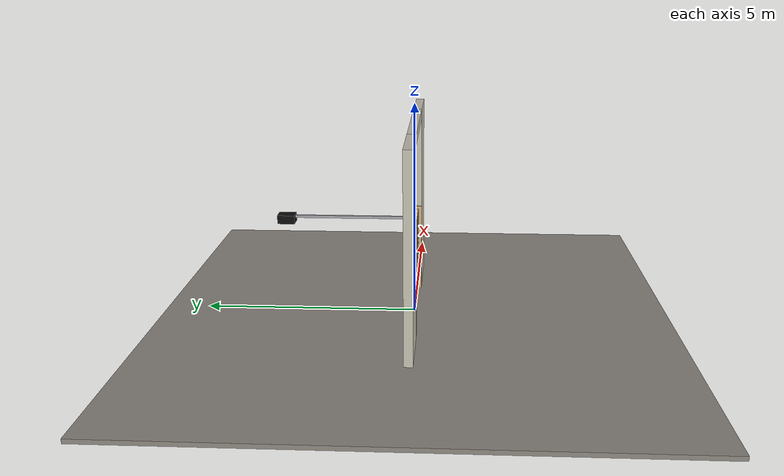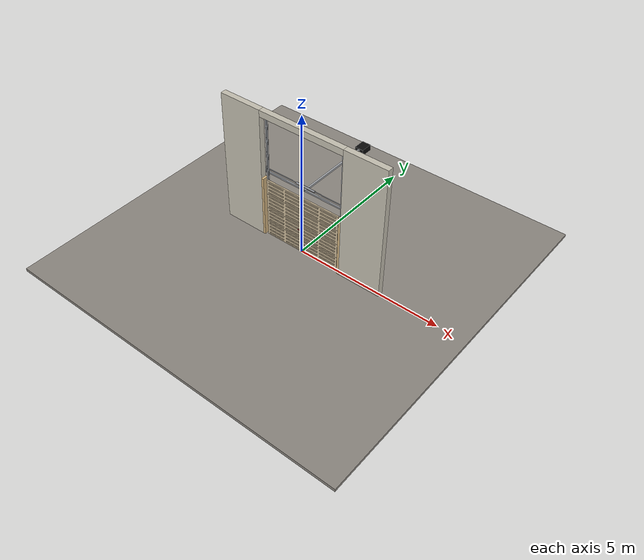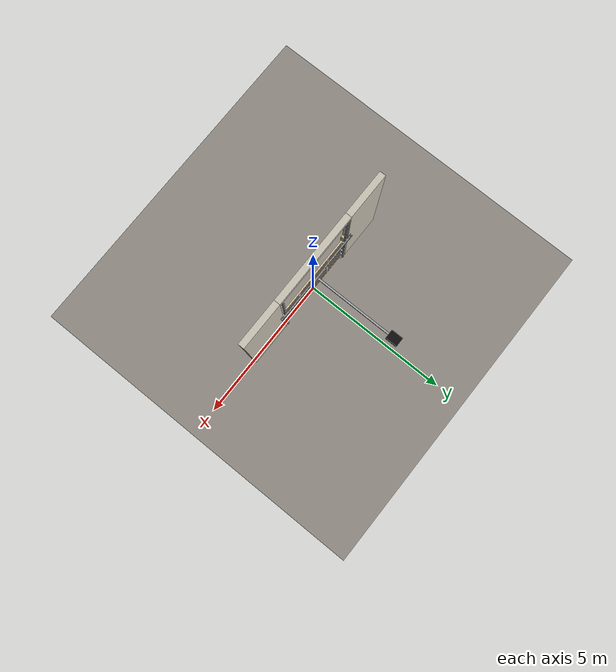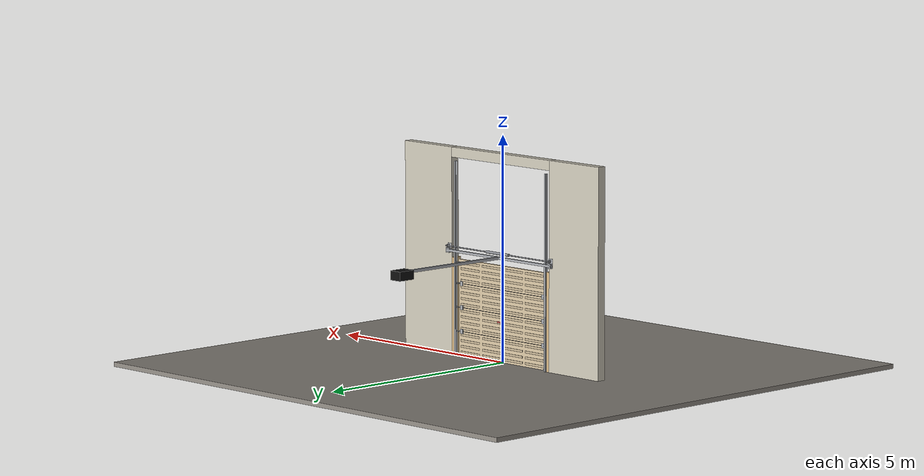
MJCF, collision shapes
<?xml version="1.0" ?>
<mujoco model="db0629_garage_sectional_full">
  <compiler angle="radian" meshdir="../../hardware" texturedir="../../textures" autolimits="true" inertiafromgeom="false"/>
  <option timestep="0.002" integrator="implicitfast" cone="elliptic" impratio="10" noslip_iterations="3">
    <flag multiccd="enable"/>
  </option>
  <size memory="16M"/>
  <default>
    <geom condim="4" solref="0.005 1" solimp="0.95 0.99 0.001"/>
    <joint solreflimit="0.005 1" solimplimit="0.95 0.99 0.001"/>
    <tendon solreflimit="0.005 1"/>
    <equality solref="0.002 1"/>
  </default>
  <visual>
    <headlight ambient="0.4 0.4 0.4" diffuse="0.7 0.7 0.7" specular="0.2 0.2 0.2"/>
    <quality shadowsize="4096"/>
    <map znear="0.01" zfar="60"/>
  </visual>
  <asset>
    <mesh name="pull_bdc5e965ab" file="pull_bdc5e965ab.obj"/>
    <material name="mat_floor" rgba="0.55 0.53 0.5 1" specular="0.2" shininess="0.15" reflectance="0"/>
    <material name="mat_wall" rgba="0.78 0.76 0.7 1" specular="0.2" shininess="0.1" reflectance="0"/>
    <material name="mat_frame" rgba="0.82 0.7 0.5 1" specular="0.2" shininess="0.45" reflectance="0"/>
    <material name="mat_track" rgba="0.65 0.66 0.68 1" specular="0.74" shininess="0.5" reflectance="0.36"/>
    <material name="mat_section_0" rgba="0.82 0.75 0.62 1" specular="0.23" shininess="0.49" reflectance="0.02"/>
    <material name="mat_section_0_panel" rgba="0.754 0.69 0.57 1" specular="0.23" shininess="0.49" reflectance="0.02"/>
    <material name="mat_section_1" rgba="0.82 0.75 0.62 1" specular="0.23" shininess="0.49" reflectance="0.02"/>
    <material name="mat_section_1_panel" rgba="0.754 0.69 0.57 1" specular="0.23" shininess="0.49" reflectance="0.02"/>
    <material name="mat_hinge_line" rgba="0.2 0.2 0.2 1" specular="0.2" shininess="0.3" reflectance="0"/>
    <material name="mat_section_2" rgba="0.82 0.75 0.62 1" specular="0.23" shininess="0.49" reflectance="0.02"/>
    <material name="mat_section_2_panel" rgba="0.754 0.69 0.57 1" specular="0.23" shininess="0.49" reflectance="0.02"/>
    <material name="mat_section_3" rgba="0.82 0.75 0.62 1" specular="0.23" shininess="0.49" reflectance="0.02"/>
    <material name="mat_section_3_panel" rgba="0.754 0.69 0.57 1" specular="0.23" shininess="0.49" reflectance="0.02"/>
    <material name="mat_spring" rgba="0.55 0.56 0.58 1" specular="0.8" shininess="0.55" reflectance="0.4"/>
    <material name="mat_opener" rgba="0.05 0.05 0.05 1" specular="0.38" shininess="0.3" reflectance="0.12"/>
    <material name="mat_op_black_matte_metal" rgba="0.05 0.05 0.05 1" specular="0.38" shininess="0.3" reflectance="0.12"/>
    <texture name="skybox" type="skybox" builtin="gradient" rgb1="0.6 0.7 0.85" rgb2="0.9 0.92 0.95" width="256" height="256"/>
  </asset>
  <worldbody>
    <light name="sun" pos="1.5 -2.5 4" dir="-0.3 0.5 -0.8" directional="true" diffuse="0.8 0.8 0.8" specular="0.3 0.3 0.3" castshadow="true"/>
    <light name="fill" pos="-1.5 2.5 3" dir="0.3 -0.5 -0.7" directional="true" diffuse="0.35 0.35 0.4" castshadow="false"/>
    <camera name="robot_view" pos="0 -3.240625 1.997375" xyaxes="1 0 0 0 0.26963 0.962964" fovy="52"/>
    <camera name="far_view" pos="0 3.240625 1.997375" xyaxes="-1 0 0 0 -0.26963 0.962964" fovy="52"/>
    <camera name="iso" pos="2.462875 -2.722125 2.515875" xyaxes="0.741536 0.670913 0 -0.242917 0.268487 0.932151" fovy="46"/>
    <camera name="detail_handle" pos="0.25 -1.175 1.25" xyaxes="0.975133 0.221621 0 -0.065674 0.288965 0.955084" fovy="38"/>
    <geom name="floor" type="box" size="6 6 0.05" pos="0 0 -0.05" material="mat_floor" group="0" contype="1" conaffinity="1" friction="0.8 0.005 0.0001" density="2400"/>
    <geom name="wall_left" type="box" size="0.7425 0.1 2.305" pos="-2.2575 0 2.305" material="mat_wall" group="0" contype="1" conaffinity="1" friction="0.6 0.005 0.0001" density="800"/>
    <geom name="wall_right" type="box" size="0.7425 0.1 2.305" pos="2.2575 0 2.305" material="mat_wall" group="0" contype="1" conaffinity="1" friction="0.6 0.005 0.0001" density="800"/>
    <geom name="wall_header" type="box" size="1.515 0.1 0.11" pos="0 0 4.5" material="mat_wall" group="0" contype="1" conaffinity="1" friction="0.6 0.005 0.0001" density="800"/>
    <geom name="garage_jamb_l" type="box" size="0.04 0.1 1.09" pos="-1.475 0 1.09" material="mat_frame" group="0" contype="1" conaffinity="1" friction="0.6 0.005 0.0001" density="400"/>
    <geom name="garage_jamb_r" type="box" size="0.04 0.1 1.09" pos="1.475 0 1.09" material="mat_frame" group="0" contype="1" conaffinity="1" friction="0.6 0.005 0.0001" density="400"/>
    <geom name="track_l" type="box" size="0.004 0.033 2.155" pos="-1.42 0.085 2.155" material="mat_track" group="0" contype="1" conaffinity="1" friction="0.6 0.005 0.0001" density="7850"/>
    <geom name="track_l_flange_n" type="box" size="0.022 0.004 2.155" pos="-1.402 0.056 2.155" material="mat_track" group="0" contype="1" conaffinity="1" friction="0.6 0.005 0.0001" density="7850"/>
    <geom name="track_l_flange_p" type="box" size="0.022 0.004 2.155" pos="-1.402 0.114 2.155" material="mat_track" group="0" contype="1" conaffinity="1" friction="0.6 0.005 0.0001" density="7850"/>
    <geom name="track_r" type="box" size="0.004 0.033 2.155" pos="1.42 0.085 2.155" material="mat_track" group="0" contype="1" conaffinity="1" friction="0.6 0.005 0.0001" density="7850"/>
    <geom name="track_r_flange_n" type="box" size="0.022 0.004 2.155" pos="1.402 0.056 2.155" material="mat_track" group="0" contype="1" conaffinity="1" friction="0.6 0.005 0.0001" density="7850"/>
    <geom name="track_r_flange_p" type="box" size="0.022 0.004 2.155" pos="1.402 0.114 2.155" material="mat_track" group="0" contype="1" conaffinity="1" friction="0.6 0.005 0.0001" density="7850"/>
    <geom name="torsion_shaft" type="cylinder" size="0.013 1.625" pos="0 0.17 2.43" quat="0.707107 0 0.707107 0" material="mat_track" group="0" contype="1" conaffinity="1" friction="0.6 0.005 0.0001" density="7850"/>
    <geom name="torsion_spring" type="cylinder" size="0.03 0.35" pos="0 0.17 2.43" quat="0.707107 0 0.707107 0" material="mat_spring" group="1" contype="0" conaffinity="0" density="7850"/>
    <geom name="torsion_bearing_plate_l" type="box" size="0.055 0.004 0.055" pos="-1.575 0.104 2.43" material="mat_track" group="1" contype="0" conaffinity="0" density="7850"/>
    <geom name="torsion_bearing_arm_l" type="box" size="0.008 0.049 0.03" pos="-1.575 0.139 2.43" material="mat_track" group="1" contype="0" conaffinity="0" density="7850"/>
    <geom name="torsion_bearing_plate_r" type="box" size="0.055 0.004 0.055" pos="1.575 0.104 2.43" material="mat_track" group="1" contype="0" conaffinity="0" density="7850"/>
    <geom name="torsion_bearing_arm_r" type="box" size="0.008 0.049 0.03" pos="1.575 0.139 2.43" material="mat_track" group="1" contype="0" conaffinity="0" density="7850"/>
    <geom name="opener_header_angle" type="box" size="1.63 0.025 0.025" pos="0 0.145 2.33" material="mat_track" group="1" contype="0" conaffinity="0" density="7850"/>
    <geom name="opener_header_gusset_l" type="box" size="0.05 0.035 0.05" pos="-1.575 0.135 2.33" material="mat_track" group="1" contype="0" conaffinity="0" density="7850"/>
    <geom name="opener_header_gusset_r" type="box" size="0.05 0.035 0.05" pos="1.575 0.135 2.33" material="mat_track" group="1" contype="0" conaffinity="0" density="7850"/>
    <geom name="opener_rail" type="box" size="0.03 1.44 0.03" pos="0 1.56 2.33" material="mat_track" group="0" contype="1" conaffinity="1" friction="0.6 0.005 0.0001" density="7850"/>
    <geom name="opener_unit" type="box" size="0.15 0.2 0.1" pos="0 3 2.28" material="mat_opener" group="0" contype="1" conaffinity="1" friction="0.6 0.005 0.0001" density="500"/>
    <site name="approach_point" pos="0 -2 0" quat="1 0 0 0" size="0.05" rgba="0.2 0.9 0.2 0.5" group="4"/>
    <site name="goal_point" pos="0 2 0" quat="1 0 0 0" size="0.05" rgba="0.2 0.9 0.2 0.5" group="4"/>
    <site name="door_plane_center" pos="0 0 1.09" quat="1 0 0 0" size="0.02" rgba="0.2 0.9 0.2 0.5" group="4"/>
    <body name="door" pos="0 0 0">
      <inertial pos="0 0.009126 1.072751" mass="78.529822" quat="0.707116 -0.707097 0 0" diaginertia="28.589489168 59.907256653 88.392318489"/>
      <joint name="door_slide" type="slide" axis="0 0 1" limited="true" range="0 0.003" damping="5.926491" frictionloss="15.40229" armature="0.5"/>
      <geom name="section_0_slab" type="box" size="1.37 0.025 0.26625" pos="0 0 0.27625" material="mat_section_0" group="0" contype="1" conaffinity="1" friction="0.4 0.005 0.0001" density="1"/>
      <geom name="section_0_panel_0_n" type="box" size="0.295 0.003 0.024062" pos="-1.005 -0.028 0.084062" material="mat_section_0_panel" group="1" contype="0" conaffinity="0" density="1"/>
      <geom name="section_0_panel_0_p" type="box" size="0.295 0.003 0.024062" pos="-1.005 0.028 0.084062" material="mat_section_0_panel" group="1" contype="0" conaffinity="0" density="1"/>
      <geom name="section_0_panel_1_n" type="box" size="0.295 0.003 0.024062" pos="-0.335 -0.028 0.084062" material="mat_section_0_panel" group="1" contype="0" conaffinity="0" density="1"/>
      <geom name="section_0_panel_1_p" type="box" size="0.295 0.003 0.024062" pos="-0.335 0.028 0.084062" material="mat_section_0_panel" group="1" contype="0" conaffinity="0" density="1"/>
      <geom name="section_0_panel_2_n" type="box" size="0.295 0.003 0.024062" pos="0.335 -0.028 0.084062" material="mat_section_0_panel" group="1" contype="0" conaffinity="0" density="1"/>
      <geom name="section_0_panel_2_p" type="box" size="0.295 0.003 0.024062" pos="0.335 0.028 0.084062" material="mat_section_0_panel" group="1" contype="0" conaffinity="0" density="1"/>
      <geom name="section_0_panel_3_n" type="box" size="0.295 0.003 0.024062" pos="1.005 -0.028 0.084062" material="mat_section_0_panel" group="1" contype="0" conaffinity="0" density="1"/>
      <geom name="section_0_panel_3_p" type="box" size="0.295 0.003 0.024062" pos="1.005 0.028 0.084062" material="mat_section_0_panel" group="1" contype="0" conaffinity="0" density="1"/>
      <geom name="section_0_panel_4_n" type="box" size="0.295 0.003 0.024062" pos="-1.005 -0.028 0.212188" material="mat_section_0_panel" group="1" contype="0" conaffinity="0" density="1"/>
      <geom name="section_0_panel_4_p" type="box" size="0.295 0.003 0.024062" pos="-1.005 0.028 0.212188" material="mat_section_0_panel" group="1" contype="0" conaffinity="0" density="1"/>
      <geom name="section_0_panel_5_n" type="box" size="0.295 0.003 0.024062" pos="-0.335 -0.028 0.212188" material="mat_section_0_panel" group="1" contype="0" conaffinity="0" density="1"/>
      <geom name="section_0_panel_5_p" type="box" size="0.295 0.003 0.024062" pos="-0.335 0.028 0.212188" material="mat_section_0_panel" group="1" contype="0" conaffinity="0" density="1"/>
      <geom name="section_0_panel_6_n" type="box" size="0.295 0.003 0.024062" pos="0.335 -0.028 0.212188" material="mat_section_0_panel" group="1" contype="0" conaffinity="0" density="1"/>
      <geom name="section_0_panel_6_p" type="box" size="0.295 0.003 0.024062" pos="0.335 0.028 0.212188" material="mat_section_0_panel" group="1" contype="0" conaffinity="0" density="1"/>
      <geom name="section_0_panel_7_n" type="box" size="0.295 0.003 0.024062" pos="1.005 -0.028 0.212188" material="mat_section_0_panel" group="1" contype="0" conaffinity="0" density="1"/>
      <geom name="section_0_panel_7_p" type="box" size="0.295 0.003 0.024062" pos="1.005 0.028 0.212188" material="mat_section_0_panel" group="1" contype="0" conaffinity="0" density="1"/>
      <geom name="section_0_panel_8_n" type="box" size="0.295 0.003 0.024062" pos="-1.005 -0.028 0.340313" material="mat_section_0_panel" group="1" contype="0" conaffinity="0" density="1"/>
      <geom name="section_0_panel_8_p" type="box" size="0.295 0.003 0.024062" pos="-1.005 0.028 0.340313" material="mat_section_0_panel" group="1" contype="0" conaffinity="0" density="1"/>
      <geom name="section_0_panel_9_n" type="box" size="0.295 0.003 0.024062" pos="-0.335 -0.028 0.340313" material="mat_section_0_panel" group="1" contype="0" conaffinity="0" density="1"/>
      <geom name="section_0_panel_9_p" type="box" size="0.295 0.003 0.024062" pos="-0.335 0.028 0.340313" material="mat_section_0_panel" group="1" contype="0" conaffinity="0" density="1"/>
      <geom name="section_0_panel_10_n" type="box" size="0.295 0.003 0.024062" pos="0.335 -0.028 0.340313" material="mat_section_0_panel" group="1" contype="0" conaffinity="0" density="1"/>
      <geom name="section_0_panel_10_p" type="box" size="0.295 0.003 0.024062" pos="0.335 0.028 0.340313" material="mat_section_0_panel" group="1" contype="0" conaffinity="0" density="1"/>
      <geom name="section_0_panel_11_n" type="box" size="0.295 0.003 0.024062" pos="1.005 -0.028 0.340313" material="mat_section_0_panel" group="1" contype="0" conaffinity="0" density="1"/>
      <geom name="section_0_panel_11_p" type="box" size="0.295 0.003 0.024062" pos="1.005 0.028 0.340313" material="mat_section_0_panel" group="1" contype="0" conaffinity="0" density="1"/>
      <geom name="section_0_panel_12_n" type="box" size="0.295 0.003 0.024062" pos="-1.005 -0.028 0.468437" material="mat_section_0_panel" group="1" contype="0" conaffinity="0" density="1"/>
      <geom name="section_0_panel_12_p" type="box" size="0.295 0.003 0.024062" pos="-1.005 0.028 0.468437" material="mat_section_0_panel" group="1" contype="0" conaffinity="0" density="1"/>
      <geom name="section_0_panel_13_n" type="box" size="0.295 0.003 0.024062" pos="-0.335 -0.028 0.468437" material="mat_section_0_panel" group="1" contype="0" conaffinity="0" density="1"/>
      <geom name="section_0_panel_13_p" type="box" size="0.295 0.003 0.024062" pos="-0.335 0.028 0.468437" material="mat_section_0_panel" group="1" contype="0" conaffinity="0" density="1"/>
      <geom name="section_0_panel_14_n" type="box" size="0.295 0.003 0.024062" pos="0.335 -0.028 0.468437" material="mat_section_0_panel" group="1" contype="0" conaffinity="0" density="1"/>
      <geom name="section_0_panel_14_p" type="box" size="0.295 0.003 0.024062" pos="0.335 0.028 0.468437" material="mat_section_0_panel" group="1" contype="0" conaffinity="0" density="1"/>
      <geom name="section_0_panel_15_n" type="box" size="0.295 0.003 0.024062" pos="1.005 -0.028 0.468437" material="mat_section_0_panel" group="1" contype="0" conaffinity="0" density="1"/>
      <geom name="section_0_panel_15_p" type="box" size="0.295 0.003 0.024062" pos="1.005 0.028 0.468437" material="mat_section_0_panel" group="1" contype="0" conaffinity="0" density="1"/>
      <geom name="section_1_slab" type="box" size="1.37 0.025 0.26625" pos="0 0 0.80875" material="mat_section_1" group="0" contype="1" conaffinity="1" friction="0.4 0.005 0.0001" density="1"/>
      <geom name="section_1_panel_0_n" type="box" size="0.295 0.003 0.024062" pos="-1.005 -0.028 0.616563" material="mat_section_1_panel" group="1" contype="0" conaffinity="0" density="1"/>
      <geom name="section_1_panel_0_p" type="box" size="0.295 0.003 0.024062" pos="-1.005 0.028 0.616563" material="mat_section_1_panel" group="1" contype="0" conaffinity="0" density="1"/>
      <geom name="section_1_panel_1_n" type="box" size="0.295 0.003 0.024062" pos="-0.335 -0.028 0.616563" material="mat_section_1_panel" group="1" contype="0" conaffinity="0" density="1"/>
      <geom name="section_1_panel_1_p" type="box" size="0.295 0.003 0.024062" pos="-0.335 0.028 0.616563" material="mat_section_1_panel" group="1" contype="0" conaffinity="0" density="1"/>
      <geom name="section_1_panel_2_n" type="box" size="0.295 0.003 0.024062" pos="0.335 -0.028 0.616563" material="mat_section_1_panel" group="1" contype="0" conaffinity="0" density="1"/>
      <geom name="section_1_panel_2_p" type="box" size="0.295 0.003 0.024062" pos="0.335 0.028 0.616563" material="mat_section_1_panel" group="1" contype="0" conaffinity="0" density="1"/>
      <geom name="section_1_panel_3_n" type="box" size="0.295 0.003 0.024062" pos="1.005 -0.028 0.616563" material="mat_section_1_panel" group="1" contype="0" conaffinity="0" density="1"/>
      <geom name="section_1_panel_3_p" type="box" size="0.295 0.003 0.024062" pos="1.005 0.028 0.616563" material="mat_section_1_panel" group="1" contype="0" conaffinity="0" density="1"/>
      <geom name="section_1_panel_4_n" type="box" size="0.295 0.003 0.024062" pos="-1.005 -0.028 0.744687" material="mat_section_1_panel" group="1" contype="0" conaffinity="0" density="1"/>
      <geom name="section_1_panel_4_p" type="box" size="0.295 0.003 0.024062" pos="-1.005 0.028 0.744687" material="mat_section_1_panel" group="1" contype="0" conaffinity="0" density="1"/>
      <geom name="section_1_panel_5_n" type="box" size="0.295 0.003 0.024062" pos="-0.335 -0.028 0.744687" material="mat_section_1_panel" group="1" contype="0" conaffinity="0" density="1"/>
      <geom name="section_1_panel_5_p" type="box" size="0.295 0.003 0.024062" pos="-0.335 0.028 0.744687" material="mat_section_1_panel" group="1" contype="0" conaffinity="0" density="1"/>
      <geom name="section_1_panel_6_n" type="box" size="0.295 0.003 0.024062" pos="0.335 -0.028 0.744687" material="mat_section_1_panel" group="1" contype="0" conaffinity="0" density="1"/>
      <geom name="section_1_panel_6_p" type="box" size="0.295 0.003 0.024062" pos="0.335 0.028 0.744687" material="mat_section_1_panel" group="1" contype="0" conaffinity="0" density="1"/>
      <geom name="section_1_panel_7_n" type="box" size="0.295 0.003 0.024062" pos="1.005 -0.028 0.744687" material="mat_section_1_panel" group="1" contype="0" conaffinity="0" density="1"/>
      <geom name="section_1_panel_7_p" type="box" size="0.295 0.003 0.024062" pos="1.005 0.028 0.744687" material="mat_section_1_panel" group="1" contype="0" conaffinity="0" density="1"/>
      <geom name="section_1_panel_8_n" type="box" size="0.295 0.003 0.024062" pos="-1.005 -0.028 0.872812" material="mat_section_1_panel" group="1" contype="0" conaffinity="0" density="1"/>
      <geom name="section_1_panel_8_p" type="box" size="0.295 0.003 0.024062" pos="-1.005 0.028 0.872812" material="mat_section_1_panel" group="1" contype="0" conaffinity="0" density="1"/>
      <geom name="section_1_panel_9_n" type="box" size="0.295 0.003 0.024062" pos="-0.335 -0.028 0.872812" material="mat_section_1_panel" group="1" contype="0" conaffinity="0" density="1"/>
      <geom name="section_1_panel_9_p" type="box" size="0.295 0.003 0.024062" pos="-0.335 0.028 0.872812" material="mat_section_1_panel" group="1" contype="0" conaffinity="0" density="1"/>
      <geom name="section_1_panel_10_n" type="box" size="0.295 0.003 0.024062" pos="0.335 -0.028 0.872812" material="mat_section_1_panel" group="1" contype="0" conaffinity="0" density="1"/>
      <geom name="section_1_panel_10_p" type="box" size="0.295 0.003 0.024062" pos="0.335 0.028 0.872812" material="mat_section_1_panel" group="1" contype="0" conaffinity="0" density="1"/>
      <geom name="section_1_panel_11_n" type="box" size="0.295 0.003 0.024062" pos="1.005 -0.028 0.872812" material="mat_section_1_panel" group="1" contype="0" conaffinity="0" density="1"/>
      <geom name="section_1_panel_11_p" type="box" size="0.295 0.003 0.024062" pos="1.005 0.028 0.872812" material="mat_section_1_panel" group="1" contype="0" conaffinity="0" density="1"/>
      <geom name="section_1_panel_12_n" type="box" size="0.295 0.003 0.024062" pos="-1.005 -0.028 1.000937" material="mat_section_1_panel" group="1" contype="0" conaffinity="0" density="1"/>
      <geom name="section_1_panel_12_p" type="box" size="0.295 0.003 0.024062" pos="-1.005 0.028 1.000937" material="mat_section_1_panel" group="1" contype="0" conaffinity="0" density="1"/>
      <geom name="section_1_panel_13_n" type="box" size="0.295 0.003 0.024062" pos="-0.335 -0.028 1.000937" material="mat_section_1_panel" group="1" contype="0" conaffinity="0" density="1"/>
      <geom name="section_1_panel_13_p" type="box" size="0.295 0.003 0.024062" pos="-0.335 0.028 1.000937" material="mat_section_1_panel" group="1" contype="0" conaffinity="0" density="1"/>
      <geom name="section_1_panel_14_n" type="box" size="0.295 0.003 0.024062" pos="0.335 -0.028 1.000937" material="mat_section_1_panel" group="1" contype="0" conaffinity="0" density="1"/>
      <geom name="section_1_panel_14_p" type="box" size="0.295 0.003 0.024062" pos="0.335 0.028 1.000937" material="mat_section_1_panel" group="1" contype="0" conaffinity="0" density="1"/>
      <geom name="section_1_panel_15_n" type="box" size="0.295 0.003 0.024062" pos="1.005 -0.028 1.000937" material="mat_section_1_panel" group="1" contype="0" conaffinity="0" density="1"/>
      <geom name="section_1_panel_15_p" type="box" size="0.295 0.003 0.024062" pos="1.005 0.028 1.000937" material="mat_section_1_panel" group="1" contype="0" conaffinity="0" density="1"/>
      <geom name="section_hinge_line_1" type="box" size="1.35 0.001 0.004" pos="0 0.026 0.5425" material="mat_hinge_line" group="1" contype="0" conaffinity="0" density="1"/>
      <geom name="section_hinge_1_147" type="box" size="0.04 0.01 0.05" pos="-1.27 0.035 0.5425" material="mat_track" group="1" contype="0" conaffinity="0" density="7850"/>
      <geom name="section_hinge_1_274" type="box" size="0.04 0.01 0.05" pos="0 0.035 0.5425" material="mat_track" group="1" contype="0" conaffinity="0" density="7850"/>
      <geom name="section_hinge_1_401" type="box" size="0.04 0.01 0.05" pos="1.27 0.035 0.5425" material="mat_track" group="1" contype="0" conaffinity="0" density="7850"/>
      <geom name="section_2_slab" type="box" size="1.37 0.025 0.26625" pos="0 0 1.34125" material="mat_section_2" group="0" contype="1" conaffinity="1" friction="0.4 0.005 0.0001" density="1"/>
      <geom name="section_2_panel_0_n" type="box" size="0.295 0.003 0.024062" pos="-1.005 -0.028 1.149062" material="mat_section_2_panel" group="1" contype="0" conaffinity="0" density="1"/>
      <geom name="section_2_panel_0_p" type="box" size="0.295 0.003 0.024062" pos="-1.005 0.028 1.149062" material="mat_section_2_panel" group="1" contype="0" conaffinity="0" density="1"/>
      <geom name="section_2_panel_1_n" type="box" size="0.295 0.003 0.024062" pos="-0.335 -0.028 1.149062" material="mat_section_2_panel" group="1" contype="0" conaffinity="0" density="1"/>
      <geom name="section_2_panel_1_p" type="box" size="0.295 0.003 0.024062" pos="-0.335 0.028 1.149062" material="mat_section_2_panel" group="1" contype="0" conaffinity="0" density="1"/>
      <geom name="section_2_panel_2_n" type="box" size="0.295 0.003 0.024062" pos="0.335 -0.028 1.149062" material="mat_section_2_panel" group="1" contype="0" conaffinity="0" density="1"/>
      <geom name="section_2_panel_2_p" type="box" size="0.295 0.003 0.024062" pos="0.335 0.028 1.149062" material="mat_section_2_panel" group="1" contype="0" conaffinity="0" density="1"/>
      <geom name="section_2_panel_3_n" type="box" size="0.295 0.003 0.024062" pos="1.005 -0.028 1.149062" material="mat_section_2_panel" group="1" contype="0" conaffinity="0" density="1"/>
      <geom name="section_2_panel_3_p" type="box" size="0.295 0.003 0.024062" pos="1.005 0.028 1.149062" material="mat_section_2_panel" group="1" contype="0" conaffinity="0" density="1"/>
      <geom name="section_2_panel_4_n" type="box" size="0.295 0.003 0.024062" pos="-1.005 -0.028 1.277187" material="mat_section_2_panel" group="1" contype="0" conaffinity="0" density="1"/>
      <geom name="section_2_panel_4_p" type="box" size="0.295 0.003 0.024062" pos="-1.005 0.028 1.277187" material="mat_section_2_panel" group="1" contype="0" conaffinity="0" density="1"/>
      <geom name="section_2_panel_5_n" type="box" size="0.295 0.003 0.024062" pos="-0.335 -0.028 1.277187" material="mat_section_2_panel" group="1" contype="0" conaffinity="0" density="1"/>
      <geom name="section_2_panel_5_p" type="box" size="0.295 0.003 0.024062" pos="-0.335 0.028 1.277187" material="mat_section_2_panel" group="1" contype="0" conaffinity="0" density="1"/>
      <geom name="section_2_panel_6_n" type="box" size="0.295 0.003 0.024062" pos="0.335 -0.028 1.277187" material="mat_section_2_panel" group="1" contype="0" conaffinity="0" density="1"/>
      <geom name="section_2_panel_6_p" type="box" size="0.295 0.003 0.024062" pos="0.335 0.028 1.277187" material="mat_section_2_panel" group="1" contype="0" conaffinity="0" density="1"/>
      <geom name="section_2_panel_7_n" type="box" size="0.295 0.003 0.024062" pos="1.005 -0.028 1.277187" material="mat_section_2_panel" group="1" contype="0" conaffinity="0" density="1"/>
      <geom name="section_2_panel_7_p" type="box" size="0.295 0.003 0.024062" pos="1.005 0.028 1.277187" material="mat_section_2_panel" group="1" contype="0" conaffinity="0" density="1"/>
      <geom name="section_2_panel_8_n" type="box" size="0.295 0.003 0.024062" pos="-1.005 -0.028 1.405312" material="mat_section_2_panel" group="1" contype="0" conaffinity="0" density="1"/>
      <geom name="section_2_panel_8_p" type="box" size="0.295 0.003 0.024062" pos="-1.005 0.028 1.405312" material="mat_section_2_panel" group="1" contype="0" conaffinity="0" density="1"/>
      <geom name="section_2_panel_9_n" type="box" size="0.295 0.003 0.024062" pos="-0.335 -0.028 1.405312" material="mat_section_2_panel" group="1" contype="0" conaffinity="0" density="1"/>
      <geom name="section_2_panel_9_p" type="box" size="0.295 0.003 0.024062" pos="-0.335 0.028 1.405312" material="mat_section_2_panel" group="1" contype="0" conaffinity="0" density="1"/>
      <geom name="section_2_panel_10_n" type="box" size="0.295 0.003 0.024062" pos="0.335 -0.028 1.405312" material="mat_section_2_panel" group="1" contype="0" conaffinity="0" density="1"/>
      <geom name="section_2_panel_10_p" type="box" size="0.295 0.003 0.024062" pos="0.335 0.028 1.405312" material="mat_section_2_panel" group="1" contype="0" conaffinity="0" density="1"/>
      <geom name="section_2_panel_11_n" type="box" size="0.295 0.003 0.024062" pos="1.005 -0.028 1.405312" material="mat_section_2_panel" group="1" contype="0" conaffinity="0" density="1"/>
      <geom name="section_2_panel_11_p" type="box" size="0.295 0.003 0.024062" pos="1.005 0.028 1.405312" material="mat_section_2_panel" group="1" contype="0" conaffinity="0" density="1"/>
      <geom name="section_2_panel_12_n" type="box" size="0.295 0.003 0.024062" pos="-1.005 -0.028 1.533437" material="mat_section_2_panel" group="1" contype="0" conaffinity="0" density="1"/>
      <geom name="section_2_panel_12_p" type="box" size="0.295 0.003 0.024062" pos="-1.005 0.028 1.533437" material="mat_section_2_panel" group="1" contype="0" conaffinity="0" density="1"/>
      <geom name="section_2_panel_13_n" type="box" size="0.295 0.003 0.024062" pos="-0.335 -0.028 1.533437" material="mat_section_2_panel" group="1" contype="0" conaffinity="0" density="1"/>
      <geom name="section_2_panel_13_p" type="box" size="0.295 0.003 0.024062" pos="-0.335 0.028 1.533437" material="mat_section_2_panel" group="1" contype="0" conaffinity="0" density="1"/>
      <geom name="section_2_panel_14_n" type="box" size="0.295 0.003 0.024062" pos="0.335 -0.028 1.533437" material="mat_section_2_panel" group="1" contype="0" conaffinity="0" density="1"/>
      <geom name="section_2_panel_14_p" type="box" size="0.295 0.003 0.024062" pos="0.335 0.028 1.533437" material="mat_section_2_panel" group="1" contype="0" conaffinity="0" density="1"/>
      <geom name="section_2_panel_15_n" type="box" size="0.295 0.003 0.024062" pos="1.005 -0.028 1.533437" material="mat_section_2_panel" group="1" contype="0" conaffinity="0" density="1"/>
      <geom name="section_2_panel_15_p" type="box" size="0.295 0.003 0.024062" pos="1.005 0.028 1.533437" material="mat_section_2_panel" group="1" contype="0" conaffinity="0" density="1"/>
      <geom name="section_hinge_line_2" type="box" size="1.35 0.001 0.004" pos="0 0.026 1.075" material="mat_hinge_line" group="1" contype="0" conaffinity="0" density="1"/>
      <geom name="section_hinge_2_147" type="box" size="0.04 0.01 0.05" pos="-1.27 0.035 1.075" material="mat_track" group="1" contype="0" conaffinity="0" density="7850"/>
      <geom name="section_hinge_2_274" type="box" size="0.04 0.01 0.05" pos="0 0.035 1.075" material="mat_track" group="1" contype="0" conaffinity="0" density="7850"/>
      <geom name="section_hinge_2_401" type="box" size="0.04 0.01 0.05" pos="1.27 0.035 1.075" material="mat_track" group="1" contype="0" conaffinity="0" density="7850"/>
      <geom name="section_3_slab" type="box" size="1.37 0.025 0.26625" pos="0 0 1.87375" material="mat_section_3" group="0" contype="1" conaffinity="1" friction="0.4 0.005 0.0001" density="1"/>
      <geom name="section_3_panel_0_n" type="box" size="0.295 0.003 0.024062" pos="-1.005 -0.028 1.681562" material="mat_section_3_panel" group="1" contype="0" conaffinity="0" density="1"/>
      <geom name="section_3_panel_0_p" type="box" size="0.295 0.003 0.024062" pos="-1.005 0.028 1.681562" material="mat_section_3_panel" group="1" contype="0" conaffinity="0" density="1"/>
      <geom name="section_3_panel_1_n" type="box" size="0.295 0.003 0.024062" pos="-0.335 -0.028 1.681562" material="mat_section_3_panel" group="1" contype="0" conaffinity="0" density="1"/>
      <geom name="section_3_panel_1_p" type="box" size="0.295 0.003 0.024062" pos="-0.335 0.028 1.681562" material="mat_section_3_panel" group="1" contype="0" conaffinity="0" density="1"/>
      <geom name="section_3_panel_2_n" type="box" size="0.295 0.003 0.024062" pos="0.335 -0.028 1.681562" material="mat_section_3_panel" group="1" contype="0" conaffinity="0" density="1"/>
      <geom name="section_3_panel_2_p" type="box" size="0.295 0.003 0.024062" pos="0.335 0.028 1.681562" material="mat_section_3_panel" group="1" contype="0" conaffinity="0" density="1"/>
      <geom name="section_3_panel_3_n" type="box" size="0.295 0.003 0.024062" pos="1.005 -0.028 1.681562" material="mat_section_3_panel" group="1" contype="0" conaffinity="0" density="1"/>
      <geom name="section_3_panel_3_p" type="box" size="0.295 0.003 0.024062" pos="1.005 0.028 1.681562" material="mat_section_3_panel" group="1" contype="0" conaffinity="0" density="1"/>
      <geom name="section_3_panel_4_n" type="box" size="0.295 0.003 0.024062" pos="-1.005 -0.028 1.809687" material="mat_section_3_panel" group="1" contype="0" conaffinity="0" density="1"/>
      <geom name="section_3_panel_4_p" type="box" size="0.295 0.003 0.024062" pos="-1.005 0.028 1.809687" material="mat_section_3_panel" group="1" contype="0" conaffinity="0" density="1"/>
      <geom name="section_3_panel_5_n" type="box" size="0.295 0.003 0.024062" pos="-0.335 -0.028 1.809687" material="mat_section_3_panel" group="1" contype="0" conaffinity="0" density="1"/>
      <geom name="section_3_panel_5_p" type="box" size="0.295 0.003 0.024062" pos="-0.335 0.028 1.809687" material="mat_section_3_panel" group="1" contype="0" conaffinity="0" density="1"/>
      <geom name="section_3_panel_6_n" type="box" size="0.295 0.003 0.024062" pos="0.335 -0.028 1.809687" material="mat_section_3_panel" group="1" contype="0" conaffinity="0" density="1"/>
      <geom name="section_3_panel_6_p" type="box" size="0.295 0.003 0.024062" pos="0.335 0.028 1.809687" material="mat_section_3_panel" group="1" contype="0" conaffinity="0" density="1"/>
      <geom name="section_3_panel_7_n" type="box" size="0.295 0.003 0.024062" pos="1.005 -0.028 1.809687" material="mat_section_3_panel" group="1" contype="0" conaffinity="0" density="1"/>
      <geom name="section_3_panel_7_p" type="box" size="0.295 0.003 0.024062" pos="1.005 0.028 1.809687" material="mat_section_3_panel" group="1" contype="0" conaffinity="0" density="1"/>
      <geom name="section_3_panel_8_n" type="box" size="0.295 0.003 0.024062" pos="-1.005 -0.028 1.937812" material="mat_section_3_panel" group="1" contype="0" conaffinity="0" density="1"/>
      <geom name="section_3_panel_8_p" type="box" size="0.295 0.003 0.024062" pos="-1.005 0.028 1.937812" material="mat_section_3_panel" group="1" contype="0" conaffinity="0" density="1"/>
      <geom name="section_3_panel_9_n" type="box" size="0.295 0.003 0.024062" pos="-0.335 -0.028 1.937812" material="mat_section_3_panel" group="1" contype="0" conaffinity="0" density="1"/>
      <geom name="section_3_panel_9_p" type="box" size="0.295 0.003 0.024062" pos="-0.335 0.028 1.937812" material="mat_section_3_panel" group="1" contype="0" conaffinity="0" density="1"/>
      <geom name="section_3_panel_10_n" type="box" size="0.295 0.003 0.024062" pos="0.335 -0.028 1.937812" material="mat_section_3_panel" group="1" contype="0" conaffinity="0" density="1"/>
      <geom name="section_3_panel_10_p" type="box" size="0.295 0.003 0.024062" pos="0.335 0.028 1.937812" material="mat_section_3_panel" group="1" contype="0" conaffinity="0" density="1"/>
      <geom name="section_3_panel_11_n" type="box" size="0.295 0.003 0.024062" pos="1.005 -0.028 1.937812" material="mat_section_3_panel" group="1" contype="0" conaffinity="0" density="1"/>
      <geom name="section_3_panel_11_p" type="box" size="0.295 0.003 0.024062" pos="1.005 0.028 1.937812" material="mat_section_3_panel" group="1" contype="0" conaffinity="0" density="1"/>
      <geom name="section_3_panel_12_n" type="box" size="0.295 0.003 0.024062" pos="-1.005 -0.028 2.065937" material="mat_section_3_panel" group="1" contype="0" conaffinity="0" density="1"/>
      <geom name="section_3_panel_12_p" type="box" size="0.295 0.003 0.024062" pos="-1.005 0.028 2.065937" material="mat_section_3_panel" group="1" contype="0" conaffinity="0" density="1"/>
      <geom name="section_3_panel_13_n" type="box" size="0.295 0.003 0.024062" pos="-0.335 -0.028 2.065937" material="mat_section_3_panel" group="1" contype="0" conaffinity="0" density="1"/>
      <geom name="section_3_panel_13_p" type="box" size="0.295 0.003 0.024062" pos="-0.335 0.028 2.065937" material="mat_section_3_panel" group="1" contype="0" conaffinity="0" density="1"/>
      <geom name="section_3_panel_14_n" type="box" size="0.295 0.003 0.024062" pos="0.335 -0.028 2.065937" material="mat_section_3_panel" group="1" contype="0" conaffinity="0" density="1"/>
      <geom name="section_3_panel_14_p" type="box" size="0.295 0.003 0.024062" pos="0.335 0.028 2.065937" material="mat_section_3_panel" group="1" contype="0" conaffinity="0" density="1"/>
      <geom name="section_3_panel_15_n" type="box" size="0.295 0.003 0.024062" pos="1.005 -0.028 2.065937" material="mat_section_3_panel" group="1" contype="0" conaffinity="0" density="1"/>
      <geom name="section_3_panel_15_p" type="box" size="0.295 0.003 0.024062" pos="1.005 0.028 2.065937" material="mat_section_3_panel" group="1" contype="0" conaffinity="0" density="1"/>
      <geom name="section_hinge_line_3" type="box" size="1.35 0.001 0.004" pos="0 0.026 1.6075" material="mat_hinge_line" group="1" contype="0" conaffinity="0" density="1"/>
      <geom name="section_hinge_3_147" type="box" size="0.04 0.01 0.05" pos="-1.27 0.035 1.6075" material="mat_track" group="1" contype="0" conaffinity="0" density="7850"/>
      <geom name="section_hinge_3_274" type="box" size="0.04 0.01 0.05" pos="0 0.035 1.6075" material="mat_track" group="1" contype="0" conaffinity="0" density="7850"/>
      <geom name="section_hinge_3_401" type="box" size="0.04 0.01 0.05" pos="1.27 0.035 1.6075" material="mat_track" group="1" contype="0" conaffinity="0" density="7850"/>
      <geom name="roller_l_0" type="cylinder" size="0.025 0.01" pos="-1.4 0.085 0.04" quat="0.707107 0 0.707107 0" material="mat_track" group="1" contype="0" conaffinity="0" density="7850"/>
      <geom name="roller_stem_l_0" type="cylinder" size="0.006 0.027" pos="-1.375 0.085 0.04" quat="0.707107 0 0.707107 0" material="mat_track" group="1" contype="0" conaffinity="0" density="7850"/>
      <geom name="roller_arm_l_0" type="box" size="0.03 0.03 0.006" pos="-1.35 0.055 0.04" material="mat_track" group="1" contype="0" conaffinity="0" density="7850"/>
      <geom name="roller_l_1" type="cylinder" size="0.025 0.01" pos="-1.4 0.085 0.5425" quat="0.707107 0 0.707107 0" material="mat_track" group="1" contype="0" conaffinity="0" density="7850"/>
      <geom name="roller_stem_l_1" type="cylinder" size="0.006 0.027" pos="-1.375 0.085 0.5425" quat="0.707107 0 0.707107 0" material="mat_track" group="1" contype="0" conaffinity="0" density="7850"/>
      <geom name="roller_arm_l_1" type="box" size="0.03 0.03 0.006" pos="-1.35 0.055 0.5425" material="mat_track" group="1" contype="0" conaffinity="0" density="7850"/>
      <geom name="roller_l_2" type="cylinder" size="0.025 0.01" pos="-1.4 0.085 1.075" quat="0.707107 0 0.707107 0" material="mat_track" group="1" contype="0" conaffinity="0" density="7850"/>
      <geom name="roller_stem_l_2" type="cylinder" size="0.006 0.027" pos="-1.375 0.085 1.075" quat="0.707107 0 0.707107 0" material="mat_track" group="1" contype="0" conaffinity="0" density="7850"/>
      <geom name="roller_arm_l_2" type="box" size="0.03 0.03 0.006" pos="-1.35 0.055 1.075" material="mat_track" group="1" contype="0" conaffinity="0" density="7850"/>
      <geom name="roller_l_3" type="cylinder" size="0.025 0.01" pos="-1.4 0.085 1.6075" quat="0.707107 0 0.707107 0" material="mat_track" group="1" contype="0" conaffinity="0" density="7850"/>
      <geom name="roller_stem_l_3" type="cylinder" size="0.006 0.027" pos="-1.375 0.085 1.6075" quat="0.707107 0 0.707107 0" material="mat_track" group="1" contype="0" conaffinity="0" density="7850"/>
      <geom name="roller_arm_l_3" type="box" size="0.03 0.03 0.006" pos="-1.35 0.055 1.6075" material="mat_track" group="1" contype="0" conaffinity="0" density="7850"/>
      <geom name="roller_l_4" type="cylinder" size="0.025 0.01" pos="-1.4 0.085 2.08" quat="0.707107 0 0.707107 0" material="mat_track" group="1" contype="0" conaffinity="0" density="7850"/>
      <geom name="roller_stem_l_4" type="cylinder" size="0.006 0.027" pos="-1.375 0.085 2.08" quat="0.707107 0 0.707107 0" material="mat_track" group="1" contype="0" conaffinity="0" density="7850"/>
      <geom name="roller_arm_l_4" type="box" size="0.03 0.03 0.006" pos="-1.35 0.055 2.08" material="mat_track" group="1" contype="0" conaffinity="0" density="7850"/>
      <geom name="roller_r_0" type="cylinder" size="0.025 0.01" pos="1.4 0.085 0.04" quat="0.707107 0 0.707107 0" material="mat_track" group="1" contype="0" conaffinity="0" density="7850"/>
      <geom name="roller_stem_r_0" type="cylinder" size="0.006 0.027" pos="1.375 0.085 0.04" quat="0.707107 0 0.707107 0" material="mat_track" group="1" contype="0" conaffinity="0" density="7850"/>
      <geom name="roller_arm_r_0" type="box" size="0.03 0.03 0.006" pos="1.35 0.055 0.04" material="mat_track" group="1" contype="0" conaffinity="0" density="7850"/>
      <geom name="roller_r_1" type="cylinder" size="0.025 0.01" pos="1.4 0.085 0.5425" quat="0.707107 0 0.707107 0" material="mat_track" group="1" contype="0" conaffinity="0" density="7850"/>
      <geom name="roller_stem_r_1" type="cylinder" size="0.006 0.027" pos="1.375 0.085 0.5425" quat="0.707107 0 0.707107 0" material="mat_track" group="1" contype="0" conaffinity="0" density="7850"/>
      <geom name="roller_arm_r_1" type="box" size="0.03 0.03 0.006" pos="1.35 0.055 0.5425" material="mat_track" group="1" contype="0" conaffinity="0" density="7850"/>
      <geom name="roller_r_2" type="cylinder" size="0.025 0.01" pos="1.4 0.085 1.075" quat="0.707107 0 0.707107 0" material="mat_track" group="1" contype="0" conaffinity="0" density="7850"/>
      <geom name="roller_stem_r_2" type="cylinder" size="0.006 0.027" pos="1.375 0.085 1.075" quat="0.707107 0 0.707107 0" material="mat_track" group="1" contype="0" conaffinity="0" density="7850"/>
      <geom name="roller_arm_r_2" type="box" size="0.03 0.03 0.006" pos="1.35 0.055 1.075" material="mat_track" group="1" contype="0" conaffinity="0" density="7850"/>
      <geom name="roller_r_3" type="cylinder" size="0.025 0.01" pos="1.4 0.085 1.6075" quat="0.707107 0 0.707107 0" material="mat_track" group="1" contype="0" conaffinity="0" density="7850"/>
      <geom name="roller_stem_r_3" type="cylinder" size="0.006 0.027" pos="1.375 0.085 1.6075" quat="0.707107 0 0.707107 0" material="mat_track" group="1" contype="0" conaffinity="0" density="7850"/>
      <geom name="roller_arm_r_3" type="box" size="0.03 0.03 0.006" pos="1.35 0.055 1.6075" material="mat_track" group="1" contype="0" conaffinity="0" density="7850"/>
      <geom name="roller_r_4" type="cylinder" size="0.025 0.01" pos="1.4 0.085 2.08" quat="0.707107 0 0.707107 0" material="mat_track" group="1" contype="0" conaffinity="0" density="7850"/>
      <geom name="roller_stem_r_4" type="cylinder" size="0.006 0.027" pos="1.375 0.085 2.08" quat="0.707107 0 0.707107 0" material="mat_track" group="1" contype="0" conaffinity="0" density="7850"/>
      <geom name="roller_arm_r_4" type="box" size="0.03 0.03 0.006" pos="1.35 0.055 2.08" material="mat_track" group="1" contype="0" conaffinity="0" density="7850"/>
      <geom name="lift_handle_n" type="mesh" mesh="pull_bdc5e965ab" pos="0 -0.025 0.9" quat="0.707107 0.707107 0 0" material="mat_op_black_matte_metal" group="1" contype="0" conaffinity="0" density="3000"/>
      <geom name="lift_handle_col_n" type="box" size="0.1 0.006 0.015" pos="0 -0.075 0.9" material="mat_op_black_matte_metal" group="3" contype="1" conaffinity="1" rgba="0.8 0.3 0.3 0.25" friction="0.6 0.005 0.0001" density="3000"/>
      <geom name="lift_handle_p" type="mesh" mesh="pull_bdc5e965ab" pos="0 0.025 0.9" quat="-0.707107 0.707107 0 0" material="mat_op_black_matte_metal" group="1" contype="0" conaffinity="0" density="3000"/>
      <geom name="lift_handle_col_p" type="box" size="0.1 0.006 0.015" pos="0 0.075 0.9" material="mat_op_black_matte_metal" group="3" contype="1" conaffinity="1" rgba="0.8 0.3 0.3 0.25" friction="0.6 0.005 0.0001" density="3000"/>
      <site name="lift_handle_grip_n" pos="0 -0.075 0.9" quat="1 0 0 0" size="0.012" rgba="0.2 0.9 0.2 0.5" group="4"/>
      <site name="lift_handle_grip_p" pos="0 0.075 0.9" quat="1 0 0 0" size="0.012" rgba="0.2 0.9 0.2 0.5" group="4"/>
    </body>
  </worldbody>
  <sensor>
    <jointpos name="door_slide_pos" joint="door_slide"/>
    <jointvel name="door_slide_vel" joint="door_slide"/>
  </sensor>
</mujoco>
